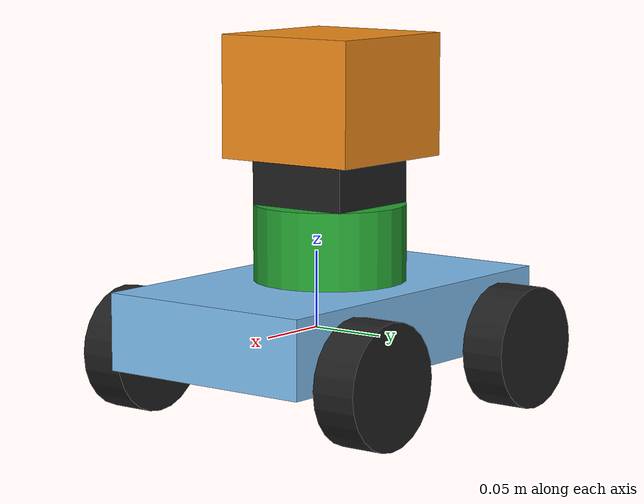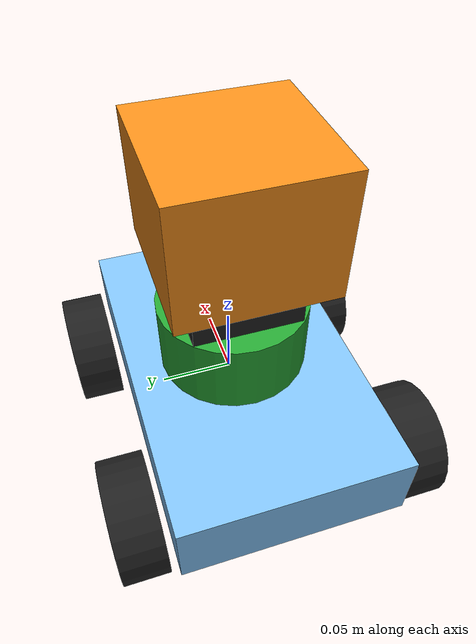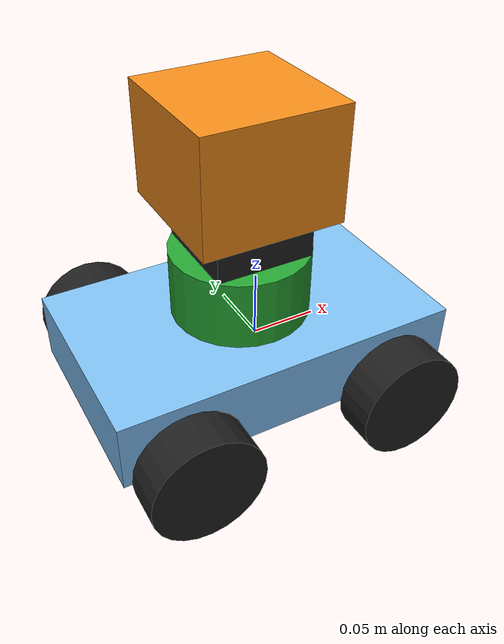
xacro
<?xml version="1.0" ?>
<robot name="bfl_10" xmlns:xacro="http://ros.org/wiki/xacro">
  <xacro:include filename="$(find dharmendra_model)/gazebo/bfl_10/bfl_10.gazebo"/>

  <link name="1chassy_link">
    <inertial>
      <mass value="1"/>
      <origin xyz="0 0 0" rpy="0 0 0"/>
      <inertia ixx="0.166667" ixy="0" ixz="0" iyy="0.166667" iyz="0" izz="0.166667"/>
    </inertial>
    <collision>
      <origin xyz="-0.01153 -0.0009   0.005" rpy="0 0 0"/>
      <geometry>
        <box size="0.25 0.15 0.05"/>
      </geometry>
    </collision>
    <visual>
      <origin xyz="-0.01153 -0.0009   0.005" rpy="0 0 0"/>
      <geometry>
        <box size="0.25 0.15 0.05"/>
      </geometry>
    </visual>
  </link>

  <link name="2back_left_link">
    <inertial>
      <mass value="1"/>
      <origin xyz="0 0 0" rpy="0 0 0"/>
      <inertia ixx="0.145833" ixy="0" ixz="0" iyy="0.145833" iyz="0" izz="0.125"/>
    </inertial>
    <collision>
      <origin xyz="0 0 0" rpy="0 0 0"/>
      <geometry>
        <cylinder radius="0.04" length="0.03"/>
      </geometry>
    </collision>
    <visual>
      <origin xyz="0 0 0" rpy="0 0 0"/>
      <geometry>
        <cylinder radius="0.04" length="0.03"/>
      </geometry>
    </visual>
  </link>

  <joint name="back_left_joint" type="revolute">
    <parent link="1chassy_link"/>
    <child link="2back_left_link"/>
    <origin xyz="0.06435 -0.09418 -0.015" rpy="1.5708 0     0"/>
    <axis xyz="0 0 1"/>
    <limit lower="-1.79769e+308" upper="1.79769e+308" effort="-1.0" velocity="-1.0"/>
  </joint>

  <link name="3camera_stand_link">
    <inertial>
      <mass value="1"/>
      <origin xyz="0 0 0" rpy="0 0 0"/>
      <inertia ixx="0.166667" ixy="0" ixz="0" iyy="0.166667" iyz="0" izz="0.166667"/>
    </inertial>
    <collision>
      <origin xyz="0 0 0" rpy="0 0 0"/>
      <geometry>
        <box size="0.07071 0.03 0.07071"/>
      </geometry>
    </collision>
    <visual>
      <origin xyz="0 0 0" rpy="0 0 0"/>
      <geometry>
        <box size="0.07071 0.03 0.07071"/>
      </geometry>
    </visual>
  </link>

  <joint name="camera_stand_joint" type="fixed">
    <parent link="1chassy_link"/>
    <child link="3camera_stand_link"/>
    <origin xyz="-0.01181  0.00131  0.09497" rpy="-1.5708  0     3.14159"/>
    <axis xyz="0 0 0"/>
    <limit lower="0" upper="0" effort="0" velocity="0"/>
  </joint>

  <link name="4front_left_link">
    <inertial>
      <mass value="1"/>
      <origin xyz="0 0 0" rpy="0 0 0"/>
      <inertia ixx="0.145833" ixy="0" ixz="0" iyy="0.145833" iyz="0" izz="0.125"/>
    </inertial>
    <collision>
      <origin xyz="0 0 0" rpy="0 0 0"/>
      <geometry>
        <cylinder radius="0.04" length="0.03"/>
      </geometry>
    </collision>
    <visual>
      <origin xyz="0 0 0" rpy="0 0 0"/>
      <geometry>
        <cylinder radius="0.04" length="0.03"/>
      </geometry>
    </visual>
  </link>

  <joint name="front_left_joint" type="revolute">
    <parent link="1chassy_link"/>
    <child link="4front_left_link"/>
    <origin xyz="-0.09187 -0.09418 -0.015" rpy="1.5708 0     0"/>
    <axis xyz="0 0 1"/>
    <limit lower="-1.79769e+308" upper="1.79769e+308" effort="-1.0" velocity="-1.0"/>
  </joint>

  <link name="5back_right_link">
    <inertial>
      <mass value="1"/>
      <origin xyz="0 0 0" rpy="0 0 0"/>
      <inertia ixx="0.145833" ixy="0" ixz="0" iyy="0.145833" iyz="0" izz="0.125"/>
    </inertial>
    <collision>
      <origin xyz="0 0 0" rpy="0 0 0"/>
      <geometry>
        <cylinder radius="0.04" length="0.03"/>
      </geometry>
    </collision>
    <visual>
      <origin xyz="0 0 0" rpy="0 0 0"/>
      <geometry>
        <cylinder radius="0.04" length="0.03"/>
      </geometry>
    </visual>
  </link>

  <joint name="back_right_joint" type="revolute">
    <parent link="1chassy_link"/>
    <child link="5back_right_link"/>
    <origin xyz="0.06435  0.09414 -0.015" rpy="1.5708 0     0"/>
    <axis xyz="0 0 1"/>
    <limit lower="-1.79769e+308" upper="1.79769e+308" effort="-1.0" velocity="-1.0"/>
  </joint>

   <link name="6front_right_link">
    <inertial>
      <mass value="1"/>
      <origin xyz="0 0 0" rpy="0 0 0"/>
      <inertia ixx="0.145833" ixy="0" ixz="0" iyy="0.145833" iyz="0" izz="0.125"/>
    </inertial>
    <collision>
      <origin xyz="0 0 0" rpy="0 0 0"/>
      <geometry>
        <cylinder radius="0.04" length="0.03"/>
      </geometry>
    </collision>
    <visual>
      <origin xyz="0 0 0" rpy="0 0 0"/>
      <geometry>
        <cylinder radius="0.04" length="0.03"/>
      </geometry>
    </visual>
  </link>

  <joint name="front_right_joint" type="revolute">
    <parent link="1chassy_link"/>
    <child link="6front_right_link"/>
    <origin xyz="-0.09187  0.09414 -0.015" rpy="1.5708 0     0"/>
    <axis xyz="0 0 1"/>
    <limit lower="-1.79769e+308" upper="1.79769e+308" effort="-1.0" velocity="-1.0"/>
  </joint>

  <link name="7lidar_link">
    <inertial>
      <mass value="1"/>
      <origin xyz="0 0 0" rpy="0 0 0"/>
      <inertia ixx="0.145833" ixy="0" ixz="0" iyy="0.145833" iyz="0" izz="0.125"/>
    </inertial>
    <collision>
      <origin xyz="0 0 0" rpy="0 0 0"/>
      <geometry>
        <cylinder radius="0.05" length="0.05"/>
      </geometry>
    </collision>
    <visual>
      <origin xyz="0 0 0" rpy="0 0 0"/>
      <geometry>
        <cylinder radius="0.05" length="0.05"/>
      </geometry>
    </visual>
  </link>

  <joint name="lidar_joint" type="fixed">
    <parent link="1chassy_link"/>
    <child link="7lidar_link"/>
    <origin xyz="-0.01235  0.00097  0.055" rpy="0 0 0"/>
    <axis xyz="0 0 0"/>
    <limit lower="0" upper="0" effort="0" velocity="0"/>
  </joint>

  <link name="8camera_link">
    <inertial>
      <mass value="1"/>
      <origin xyz="0 0 0" rpy="0 0 0"/>
      <inertia ixx="0.166667" ixy="0" ixz="0" iyy="0.166667" iyz="0" izz="0.166667"/>
    </inertial>
    <collision>
      <origin xyz="0 0 0" rpy="0 0 0"/>
      <geometry>
        <box size="0.1 0.1 0.08"/>
      </geometry>
    </collision>
    <visual>
      <origin xyz="0 0 0" rpy="0 0 0"/>
      <geometry>
        <box size="0.1 0.1 0.08"/>
      </geometry>
    </visual>
  </link>

  <joint name="camera_joint" type="fixed">
    <parent link="1chassy_link"/>
    <child link="8camera_link"/>
    <origin xyz="-0.01408  0.00077  0.15" rpy="0      0      0.00029"/>
    <axis xyz="0 0 0"/>
    <limit lower="0" upper="0" effort="0" velocity="0"/>
  </joint>

</robot>
